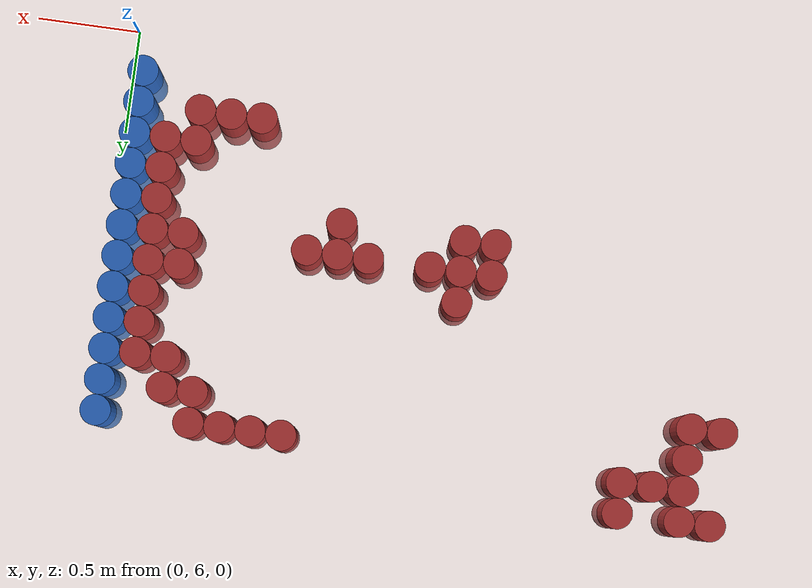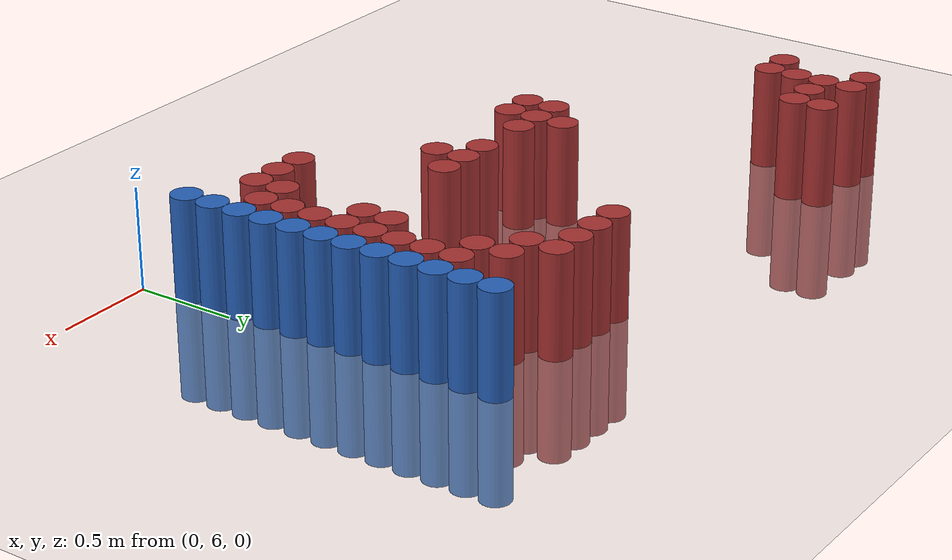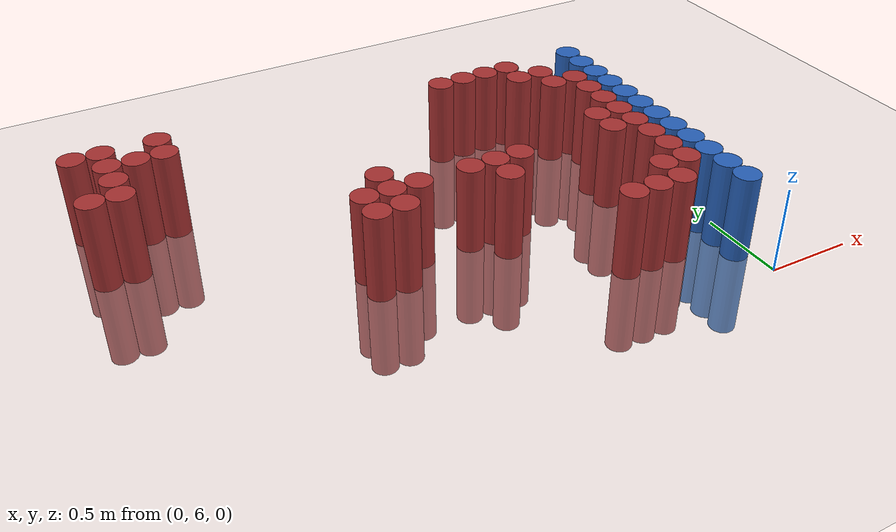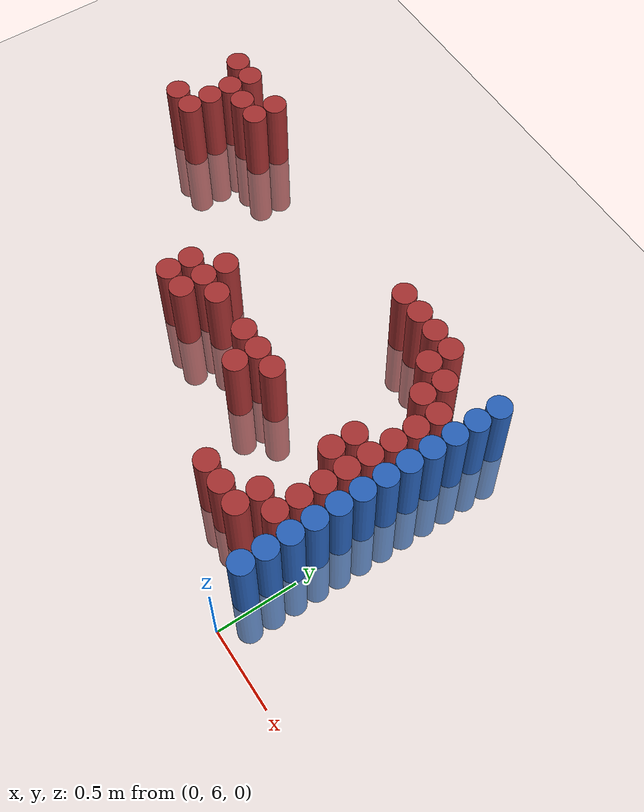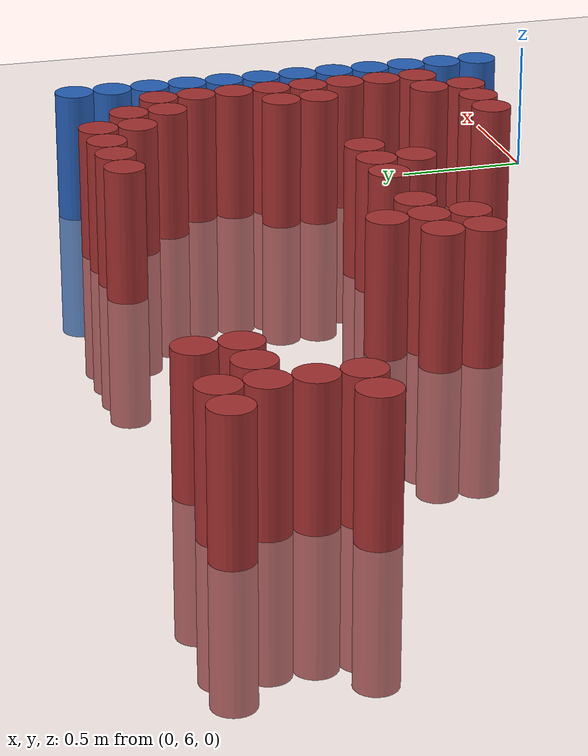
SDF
<sdf version="1.6">
 <world name="default">
  <model name="ground_plane">
   <static>1</static>
   <link name="link">
    <collision name="collision">
     <geometry><plane><normal>0 0 1</normal><size>100 100</size></plane></geometry>
     <surface><friction><ode><mu>100</mu><mu2>50</mu2></ode></friction></surface>
    </collision>
    <visual name="visual">
     <cast_shadows>0</cast_shadows>
     <geometry><plane><normal>0 0 1</normal><size>100 100</size></plane></geometry>
     <material>
      <script><uri>file://media/materials/scripts/gazebo.material</uri><name>Gazebo/Grey</name></script>
     </material>
    </visual>
   </link>
  </model>
  <model name="unit_cylinder_173">
   <static>1</static>
   <pose>-3.075000 7.575000 0.000000 0.000000 0.000000 0.000000</pose>
   <link name="link">
    <inertial>
     <mass>1</mass>
     <inertia><ixx>0.145833</ixx><ixy>0</ixy><ixz>0</ixz><iyy>0.145833</iyy><iyz>0</iyz><izz>0.125</izz></inertia>
    </inertial>
    <collision name="collision">
     <geometry><cylinder><radius>0.075000</radius><length>1</length></cylinder></geometry>
    </collision>
    <visual name="visual">
     <geometry><cylinder><radius>0.075000</radius><length>1</length></cylinder></geometry>
     <material>
      <ambient>0.648000 0.192000 0.192000 1</ambient>
      <diffuse>0.648000 0.192000 0.192000 1</diffuse>
     </material>
     <material>
      <script><name>Gazebo/Grey</name><uri>file://media/materials/scripts/gazebo.material</uri></script>
     </material>
    </visual>
   </link>
  </model>
  <model name="unit_cylinder_174">
   <static>1</static>
   <pose>-3.075000 8.025000 0.000000 0.000000 0.000000 0.000000</pose>
   <link name="link">
    <inertial>
     <mass>1</mass>
     <inertia><ixx>0.145833</ixx><ixy>0</ixy><ixz>0</ixz><iyy>0.145833</iyy><iyz>0</iyz><izz>0.125</izz></inertia>
    </inertial>
    <collision name="collision">
     <geometry><cylinder><radius>0.075000</radius><length>1</length></cylinder></geometry>
    </collision>
    <visual name="visual">
     <geometry><cylinder><radius>0.075000</radius><length>1</length></cylinder></geometry>
     <material>
      <ambient>0.648000 0.192000 0.192000 1</ambient>
      <diffuse>0.648000 0.192000 0.192000 1</diffuse>
     </material>
     <material>
      <script><name>Gazebo/Grey</name><uri>file://media/materials/scripts/gazebo.material</uri></script>
     </material>
    </visual>
   </link>
  </model>
  <model name="unit_cylinder_179">
   <static>1</static>
   <pose>-2.925000 7.575000 0.000000 0.000000 0.000000 0.000000</pose>
   <link name="link">
    <inertial>
     <mass>1</mass>
     <inertia><ixx>0.145833</ixx><ixy>0</ixy><ixz>0</ixz><iyy>0.145833</iyy><iyz>0</iyz><izz>0.125</izz></inertia>
    </inertial>
    <collision name="collision">
     <geometry><cylinder><radius>0.075000</radius><length>1</length></cylinder></geometry>
    </collision>
    <visual name="visual">
     <geometry><cylinder><radius>0.075000</radius><length>1</length></cylinder></geometry>
     <material>
      <ambient>0.648000 0.192000 0.192000 1</ambient>
      <diffuse>0.648000 0.192000 0.192000 1</diffuse>
     </material>
     <material>
      <script><name>Gazebo/Grey</name><uri>file://media/materials/scripts/gazebo.material</uri></script>
     </material>
    </visual>
   </link>
  </model>
  <model name="unit_cylinder_180">
   <static>1</static>
   <pose>-2.925000 7.725000 0.000000 0.000000 0.000000 0.000000</pose>
   <link name="link">
    <inertial>
     <mass>1</mass>
     <inertia><ixx>0.145833</ixx><ixy>0</ixy><ixz>0</ixz><iyy>0.145833</iyy><iyz>0</iyz><izz>0.125</izz></inertia>
    </inertial>
    <collision name="collision">
     <geometry><cylinder><radius>0.075000</radius><length>1</length></cylinder></geometry>
    </collision>
    <visual name="visual">
     <geometry><cylinder><radius>0.075000</radius><length>1</length></cylinder></geometry>
     <material>
      <ambient>0.648000 0.192000 0.192000 1</ambient>
      <diffuse>0.648000 0.192000 0.192000 1</diffuse>
     </material>
     <material>
      <script><name>Gazebo/Grey</name><uri>file://media/materials/scripts/gazebo.material</uri></script>
     </material>
    </visual>
   </link>
  </model>
  <model name="unit_cylinder_181">
   <static>1</static>
   <pose>-2.925000 7.875000 0.000000 0.000000 0.000000 0.000000</pose>
   <link name="link">
    <inertial>
     <mass>1</mass>
     <inertia><ixx>0.145833</ixx><ixy>0</ixy><ixz>0</ixz><iyy>0.145833</iyy><iyz>0</iyz><izz>0.125</izz></inertia>
    </inertial>
    <collision name="collision">
     <geometry><cylinder><radius>0.075000</radius><length>1</length></cylinder></geometry>
    </collision>
    <visual name="visual">
     <geometry><cylinder><radius>0.075000</radius><length>1</length></cylinder></geometry>
     <material>
      <ambient>0.648000 0.192000 0.192000 1</ambient>
      <diffuse>0.648000 0.192000 0.192000 1</diffuse>
     </material>
     <material>
      <script><name>Gazebo/Grey</name><uri>file://media/materials/scripts/gazebo.material</uri></script>
     </material>
    </visual>
   </link>
  </model>
  <model name="unit_cylinder_182">
   <static>1</static>
   <pose>-2.925000 8.025000 0.000000 0.000000 0.000000 0.000000</pose>
   <link name="link">
    <inertial>
     <mass>1</mass>
     <inertia><ixx>0.145833</ixx><ixy>0</ixy><ixz>0</ixz><iyy>0.145833</iyy><iyz>0</iyz><izz>0.125</izz></inertia>
    </inertial>
    <collision name="collision">
     <geometry><cylinder><radius>0.075000</radius><length>1</length></cylinder></geometry>
    </collision>
    <visual name="visual">
     <geometry><cylinder><radius>0.075000</radius><length>1</length></cylinder></geometry>
     <material>
      <ambient>0.648000 0.192000 0.192000 1</ambient>
      <diffuse>0.648000 0.192000 0.192000 1</diffuse>
     </material>
     <material>
      <script><name>Gazebo/Grey</name><uri>file://media/materials/scripts/gazebo.material</uri></script>
     </material>
    </visual>
   </link>
  </model>
  <model name="unit_cylinder_184">
   <static>1</static>
   <pose>-2.775000 7.875000 0.000000 0.000000 0.000000 0.000000</pose>
   <link name="link">
    <inertial>
     <mass>1</mass>
     <inertia><ixx>0.145833</ixx><ixy>0</ixy><ixz>0</ixz><iyy>0.145833</iyy><iyz>0</iyz><izz>0.125</izz></inertia>
    </inertial>
    <collision name="collision">
     <geometry><cylinder><radius>0.075000</radius><length>1</length></cylinder></geometry>
    </collision>
    <visual name="visual">
     <geometry><cylinder><radius>0.075000</radius><length>1</length></cylinder></geometry>
     <material>
      <ambient>0.648000 0.192000 0.192000 1</ambient>
      <diffuse>0.648000 0.192000 0.192000 1</diffuse>
     </material>
     <material>
      <script><name>Gazebo/Grey</name><uri>file://media/materials/scripts/gazebo.material</uri></script>
     </material>
    </visual>
   </link>
  </model>
  <model name="unit_cylinder_186">
   <static>1</static>
   <pose>-2.625000 7.875000 0.000000 0.000000 0.000000 0.000000</pose>
   <link name="link">
    <inertial>
     <mass>1</mass>
     <inertia><ixx>0.145833</ixx><ixy>0</ixy><ixz>0</ixz><iyy>0.145833</iyy><iyz>0</iyz><izz>0.125</izz></inertia>
    </inertial>
    <collision name="collision">
     <geometry><cylinder><radius>0.075000</radius><length>1</length></cylinder></geometry>
    </collision>
    <visual name="visual">
     <geometry><cylinder><radius>0.075000</radius><length>1</length></cylinder></geometry>
     <material>
      <ambient>0.648000 0.192000 0.192000 1</ambient>
      <diffuse>0.648000 0.192000 0.192000 1</diffuse>
     </material>
     <material>
      <script><name>Gazebo/Grey</name><uri>file://media/materials/scripts/gazebo.material</uri></script>
     </material>
    </visual>
   </link>
  </model>
  <model name="unit_cylinder_187">
   <static>1</static>
   <pose>-2.625000 8.025000 0.000000 0.000000 0.000000 0.000000</pose>
   <link name="link">
    <inertial>
     <mass>1</mass>
     <inertia><ixx>0.145833</ixx><ixy>0</ixy><ixz>0</ixz><iyy>0.145833</iyy><iyz>0</iyz><izz>0.125</izz></inertia>
    </inertial>
    <collision name="collision">
     <geometry><cylinder><radius>0.075000</radius><length>1</length></cylinder></geometry>
    </collision>
    <visual name="visual">
     <geometry><cylinder><radius>0.075000</radius><length>1</length></cylinder></geometry>
     <material>
      <ambient>0.648000 0.192000 0.192000 1</ambient>
      <diffuse>0.648000 0.192000 0.192000 1</diffuse>
     </material>
     <material>
      <script><name>Gazebo/Grey</name><uri>file://media/materials/scripts/gazebo.material</uri></script>
     </material>
    </visual>
   </link>
  </model>
  <model name="unit_cylinder_208">
   <static>1</static>
   <pose>-1.875000 6.825000 0.000000 0.000000 0.000000 0.000000</pose>
   <link name="link">
    <inertial>
     <mass>1</mass>
     <inertia><ixx>0.145833</ixx><ixy>0</ixy><ixz>0</ixz><iyy>0.145833</iyy><iyz>0</iyz><izz>0.125</izz></inertia>
    </inertial>
    <collision name="collision">
     <geometry><cylinder><radius>0.075000</radius><length>1</length></cylinder></geometry>
    </collision>
    <visual name="visual">
     <geometry><cylinder><radius>0.075000</radius><length>1</length></cylinder></geometry>
     <material>
      <ambient>0.648000 0.192000 0.192000 1</ambient>
      <diffuse>0.648000 0.192000 0.192000 1</diffuse>
     </material>
     <material>
      <script><name>Gazebo/Grey</name><uri>file://media/materials/scripts/gazebo.material</uri></script>
     </material>
    </visual>
   </link>
  </model>
  <model name="unit_cylinder_209">
   <static>1</static>
   <pose>-1.875000 6.975000 0.000000 0.000000 0.000000 0.000000</pose>
   <link name="link">
    <inertial>
     <mass>1</mass>
     <inertia><ixx>0.145833</ixx><ixy>0</ixy><ixz>0</ixz><iyy>0.145833</iyy><iyz>0</iyz><izz>0.125</izz></inertia>
    </inertial>
    <collision name="collision">
     <geometry><cylinder><radius>0.075000</radius><length>1</length></cylinder></geometry>
    </collision>
    <visual name="visual">
     <geometry><cylinder><radius>0.075000</radius><length>1</length></cylinder></geometry>
     <material>
      <ambient>0.648000 0.192000 0.192000 1</ambient>
      <diffuse>0.648000 0.192000 0.192000 1</diffuse>
     </material>
     <material>
      <script><name>Gazebo/Grey</name><uri>file://media/materials/scripts/gazebo.material</uri></script>
     </material>
    </visual>
   </link>
  </model>
  <model name="unit_cylinder_212">
   <static>1</static>
   <pose>-1.725000 6.825000 0.000000 0.000000 0.000000 0.000000</pose>
   <link name="link">
    <inertial>
     <mass>1</mass>
     <inertia><ixx>0.145833</ixx><ixy>0</ixy><ixz>0</ixz><iyy>0.145833</iyy><iyz>0</iyz><izz>0.125</izz></inertia>
    </inertial>
    <collision name="collision">
     <geometry><cylinder><radius>0.075000</radius><length>1</length></cylinder></geometry>
    </collision>
    <visual name="visual">
     <geometry><cylinder><radius>0.075000</radius><length>1</length></cylinder></geometry>
     <material>
      <ambient>0.648000 0.192000 0.192000 1</ambient>
      <diffuse>0.648000 0.192000 0.192000 1</diffuse>
     </material>
     <material>
      <script><name>Gazebo/Grey</name><uri>file://media/materials/scripts/gazebo.material</uri></script>
     </material>
    </visual>
   </link>
  </model>
  <model name="unit_cylinder_213">
   <static>1</static>
   <pose>-1.725000 6.975000 0.000000 0.000000 0.000000 0.000000</pose>
   <link name="link">
    <inertial>
     <mass>1</mass>
     <inertia><ixx>0.145833</ixx><ixy>0</ixy><ixz>0</ixz><iyy>0.145833</iyy><iyz>0</iyz><izz>0.125</izz></inertia>
    </inertial>
    <collision name="collision">
     <geometry><cylinder><radius>0.075000</radius><length>1</length></cylinder></geometry>
    </collision>
    <visual name="visual">
     <geometry><cylinder><radius>0.075000</radius><length>1</length></cylinder></geometry>
     <material>
      <ambient>0.648000 0.192000 0.192000 1</ambient>
      <diffuse>0.648000 0.192000 0.192000 1</diffuse>
     </material>
     <material>
      <script><name>Gazebo/Grey</name><uri>file://media/materials/scripts/gazebo.material</uri></script>
     </material>
    </visual>
   </link>
  </model>
  <model name="unit_cylinder_214">
   <static>1</static>
   <pose>-1.725000 7.125000 0.000000 0.000000 0.000000 0.000000</pose>
   <link name="link">
    <inertial>
     <mass>1</mass>
     <inertia><ixx>0.145833</ixx><ixy>0</ixy><ixz>0</ixz><iyy>0.145833</iyy><iyz>0</iyz><izz>0.125</izz></inertia>
    </inertial>
    <collision name="collision">
     <geometry><cylinder><radius>0.075000</radius><length>1</length></cylinder></geometry>
    </collision>
    <visual name="visual">
     <geometry><cylinder><radius>0.075000</radius><length>1</length></cylinder></geometry>
     <material>
      <ambient>0.648000 0.192000 0.192000 1</ambient>
      <diffuse>0.648000 0.192000 0.192000 1</diffuse>
     </material>
     <material>
      <script><name>Gazebo/Grey</name><uri>file://media/materials/scripts/gazebo.material</uri></script>
     </material>
    </visual>
   </link>
  </model>
  <model name="unit_cylinder_216">
   <static>1</static>
   <pose>-1.575000 6.975000 0.000000 0.000000 0.000000 0.000000</pose>
   <link name="link">
    <inertial>
     <mass>1</mass>
     <inertia><ixx>0.145833</ixx><ixy>0</ixy><ixz>0</ixz><iyy>0.145833</iyy><iyz>0</iyz><izz>0.125</izz></inertia>
    </inertial>
    <collision name="collision">
     <geometry><cylinder><radius>0.075000</radius><length>1</length></cylinder></geometry>
    </collision>
    <visual name="visual">
     <geometry><cylinder><radius>0.075000</radius><length>1</length></cylinder></geometry>
     <material>
      <ambient>0.648000 0.192000 0.192000 1</ambient>
      <diffuse>0.648000 0.192000 0.192000 1</diffuse>
     </material>
     <material>
      <script><name>Gazebo/Grey</name><uri>file://media/materials/scripts/gazebo.material</uri></script>
     </material>
    </visual>
   </link>
  </model>
  <model name="unit_cylinder_217">
   <static>1</static>
   <pose>-1.275000 6.975000 0.000000 0.000000 0.000000 0.000000</pose>
   <link name="link">
    <inertial>
     <mass>1</mass>
     <inertia><ixx>0.145833</ixx><ixy>0</ixy><ixz>0</ixz><iyy>0.145833</iyy><iyz>0</iyz><izz>0.125</izz></inertia>
    </inertial>
    <collision name="collision">
     <geometry><cylinder><radius>0.075000</radius><length>1</length></cylinder></geometry>
    </collision>
    <visual name="visual">
     <geometry><cylinder><radius>0.075000</radius><length>1</length></cylinder></geometry>
     <material>
      <ambient>0.648000 0.192000 0.192000 1</ambient>
      <diffuse>0.648000 0.192000 0.192000 1</diffuse>
     </material>
     <material>
      <script><name>Gazebo/Grey</name><uri>file://media/materials/scripts/gazebo.material</uri></script>
     </material>
    </visual>
   </link>
  </model>
  <model name="unit_cylinder_222">
   <static>1</static>
   <pose>-1.125000 6.825000 0.000000 0.000000 0.000000 0.000000</pose>
   <link name="link">
    <inertial>
     <mass>1</mass>
     <inertia><ixx>0.145833</ixx><ixy>0</ixy><ixz>0</ixz><iyy>0.145833</iyy><iyz>0</iyz><izz>0.125</izz></inertia>
    </inertial>
    <collision name="collision">
     <geometry><cylinder><radius>0.075000</radius><length>1</length></cylinder></geometry>
    </collision>
    <visual name="visual">
     <geometry><cylinder><radius>0.075000</radius><length>1</length></cylinder></geometry>
     <material>
      <ambient>0.648000 0.192000 0.192000 1</ambient>
      <diffuse>0.648000 0.192000 0.192000 1</diffuse>
     </material>
     <material>
      <script><name>Gazebo/Grey</name><uri>file://media/materials/scripts/gazebo.material</uri></script>
     </material>
    </visual>
   </link>
  </model>
  <model name="unit_cylinder_223">
   <static>1</static>
   <pose>-1.125000 6.975000 0.000000 0.000000 0.000000 0.000000</pose>
   <link name="link">
    <inertial>
     <mass>1</mass>
     <inertia><ixx>0.145833</ixx><ixy>0</ixy><ixz>0</ixz><iyy>0.145833</iyy><iyz>0</iyz><izz>0.125</izz></inertia>
    </inertial>
    <collision name="collision">
     <geometry><cylinder><radius>0.075000</radius><length>1</length></cylinder></geometry>
    </collision>
    <visual name="visual">
     <geometry><cylinder><radius>0.075000</radius><length>1</length></cylinder></geometry>
     <material>
      <ambient>0.648000 0.192000 0.192000 1</ambient>
      <diffuse>0.648000 0.192000 0.192000 1</diffuse>
     </material>
     <material>
      <script><name>Gazebo/Grey</name><uri>file://media/materials/scripts/gazebo.material</uri></script>
     </material>
    </visual>
   </link>
  </model>
  <model name="unit_cylinder_232">
   <static>1</static>
   <pose>-0.975000 6.975000 0.000000 0.000000 0.000000 0.000000</pose>
   <link name="link">
    <inertial>
     <mass>1</mass>
     <inertia><ixx>0.145833</ixx><ixy>0</ixy><ixz>0</ixz><iyy>0.145833</iyy><iyz>0</iyz><izz>0.125</izz></inertia>
    </inertial>
    <collision name="collision">
     <geometry><cylinder><radius>0.075000</radius><length>1</length></cylinder></geometry>
    </collision>
    <visual name="visual">
     <geometry><cylinder><radius>0.075000</radius><length>1</length></cylinder></geometry>
     <material>
      <ambient>0.648000 0.192000 0.192000 1</ambient>
      <diffuse>0.648000 0.192000 0.192000 1</diffuse>
     </material>
     <material>
      <script><name>Gazebo/Grey</name><uri>file://media/materials/scripts/gazebo.material</uri></script>
     </material>
    </visual>
   </link>
  </model>
  <model name="unit_cylinder_233">
   <static>1</static>
   <pose>-0.975000 7.875000 0.000000 0.000000 0.000000 0.000000</pose>
   <link name="link">
    <inertial>
     <mass>1</mass>
     <inertia><ixx>0.145833</ixx><ixy>0</ixy><ixz>0</ixz><iyy>0.145833</iyy><iyz>0</iyz><izz>0.125</izz></inertia>
    </inertial>
    <collision name="collision">
     <geometry><cylinder><radius>0.075000</radius><length>1</length></cylinder></geometry>
    </collision>
    <visual name="visual">
     <geometry><cylinder><radius>0.075000</radius><length>1</length></cylinder></geometry>
     <material>
      <ambient>0.648000 0.192000 0.192000 1</ambient>
      <diffuse>0.648000 0.192000 0.192000 1</diffuse>
     </material>
     <material>
      <script><name>Gazebo/Grey</name><uri>file://media/materials/scripts/gazebo.material</uri></script>
     </material>
    </visual>
   </link>
  </model>
  <model name="unit_cylinder_239">
   <static>1</static>
   <pose>-0.825000 7.875000 0.000000 0.000000 0.000000 0.000000</pose>
   <link name="link">
    <inertial>
     <mass>1</mass>
     <inertia><ixx>0.145833</ixx><ixy>0</ixy><ixz>0</ixz><iyy>0.145833</iyy><iyz>0</iyz><izz>0.125</izz></inertia>
    </inertial>
    <collision name="collision">
     <geometry><cylinder><radius>0.075000</radius><length>1</length></cylinder></geometry>
    </collision>
    <visual name="visual">
     <geometry><cylinder><radius>0.075000</radius><length>1</length></cylinder></geometry>
     <material>
      <ambient>0.648000 0.192000 0.192000 1</ambient>
      <diffuse>0.648000 0.192000 0.192000 1</diffuse>
     </material>
     <material>
      <script><name>Gazebo/Grey</name><uri>file://media/materials/scripts/gazebo.material</uri></script>
     </material>
    </visual>
   </link>
  </model>
  <model name="unit_cylinder_242">
   <static>1</static>
   <pose>-0.675000 6.375000 0.000000 0.000000 0.000000 0.000000</pose>
   <link name="link">
    <inertial>
     <mass>1</mass>
     <inertia><ixx>0.145833</ixx><ixy>0</ixy><ixz>0</ixz><iyy>0.145833</iyy><iyz>0</iyz><izz>0.125</izz></inertia>
    </inertial>
    <collision name="collision">
     <geometry><cylinder><radius>0.075000</radius><length>1</length></cylinder></geometry>
    </collision>
    <visual name="visual">
     <geometry><cylinder><radius>0.075000</radius><length>1</length></cylinder></geometry>
     <material>
      <ambient>0.648000 0.192000 0.192000 1</ambient>
      <diffuse>0.648000 0.192000 0.192000 1</diffuse>
     </material>
     <material>
      <script><name>Gazebo/Grey</name><uri>file://media/materials/scripts/gazebo.material</uri></script>
     </material>
    </visual>
   </link>
  </model>
  <model name="unit_cylinder_243">
   <static>1</static>
   <pose>-0.675000 7.875000 0.000000 0.000000 0.000000 0.000000</pose>
   <link name="link">
    <inertial>
     <mass>1</mass>
     <inertia><ixx>0.145833</ixx><ixy>0</ixy><ixz>0</ixz><iyy>0.145833</iyy><iyz>0</iyz><izz>0.125</izz></inertia>
    </inertial>
    <collision name="collision">
     <geometry><cylinder><radius>0.075000</radius><length>1</length></cylinder></geometry>
    </collision>
    <visual name="visual">
     <geometry><cylinder><radius>0.075000</radius><length>1</length></cylinder></geometry>
     <material>
      <ambient>0.648000 0.192000 0.192000 1</ambient>
      <diffuse>0.648000 0.192000 0.192000 1</diffuse>
     </material>
     <material>
      <script><name>Gazebo/Grey</name><uri>file://media/materials/scripts/gazebo.material</uri></script>
     </material>
    </visual>
   </link>
  </model>
  <model name="unit_cylinder_247">
   <static>1</static>
   <pose>-0.525000 6.375000 0.000000 0.000000 0.000000 0.000000</pose>
   <link name="link">
    <inertial>
     <mass>1</mass>
     <inertia><ixx>0.145833</ixx><ixy>0</ixy><ixz>0</ixz><iyy>0.145833</iyy><iyz>0</iyz><izz>0.125</izz></inertia>
    </inertial>
    <collision name="collision">
     <geometry><cylinder><radius>0.075000</radius><length>1</length></cylinder></geometry>
    </collision>
    <visual name="visual">
     <geometry><cylinder><radius>0.075000</radius><length>1</length></cylinder></geometry>
     <material>
      <ambient>0.648000 0.192000 0.192000 1</ambient>
      <diffuse>0.648000 0.192000 0.192000 1</diffuse>
     </material>
     <material>
      <script><name>Gazebo/Grey</name><uri>file://media/materials/scripts/gazebo.material</uri></script>
     </material>
    </visual>
   </link>
  </model>
  <model name="unit_cylinder_248">
   <static>1</static>
   <pose>-0.525000 7.725000 0.000000 0.000000 0.000000 0.000000</pose>
   <link name="link">
    <inertial>
     <mass>1</mass>
     <inertia><ixx>0.145833</ixx><ixy>0</ixy><ixz>0</ixz><iyy>0.145833</iyy><iyz>0</iyz><izz>0.125</izz></inertia>
    </inertial>
    <collision name="collision">
     <geometry><cylinder><radius>0.075000</radius><length>1</length></cylinder></geometry>
    </collision>
    <visual name="visual">
     <geometry><cylinder><radius>0.075000</radius><length>1</length></cylinder></geometry>
     <material>
      <ambient>0.648000 0.192000 0.192000 1</ambient>
      <diffuse>0.648000 0.192000 0.192000 1</diffuse>
     </material>
     <material>
      <script><name>Gazebo/Grey</name><uri>file://media/materials/scripts/gazebo.material</uri></script>
     </material>
    </visual>
   </link>
  </model>
  <model name="unit_cylinder_249">
   <static>1</static>
   <pose>-0.525000 7.875000 0.000000 0.000000 0.000000 0.000000</pose>
   <link name="link">
    <inertial>
     <mass>1</mass>
     <inertia><ixx>0.145833</ixx><ixy>0</ixy><ixz>0</ixz><iyy>0.145833</iyy><iyz>0</iyz><izz>0.125</izz></inertia>
    </inertial>
    <collision name="collision">
     <geometry><cylinder><radius>0.075000</radius><length>1</length></cylinder></geometry>
    </collision>
    <visual name="visual">
     <geometry><cylinder><radius>0.075000</radius><length>1</length></cylinder></geometry>
     <material>
      <ambient>0.648000 0.192000 0.192000 1</ambient>
      <diffuse>0.648000 0.192000 0.192000 1</diffuse>
     </material>
     <material>
      <script><name>Gazebo/Grey</name><uri>file://media/materials/scripts/gazebo.material</uri></script>
     </material>
    </visual>
   </link>
  </model>
  <model name="unit_cylinder_254">
   <static>1</static>
   <pose>-0.375000 6.375000 0.000000 0.000000 0.000000 0.000000</pose>
   <link name="link">
    <inertial>
     <mass>1</mass>
     <inertia><ixx>0.145833</ixx><ixy>0</ixy><ixz>0</ixz><iyy>0.145833</iyy><iyz>0</iyz><izz>0.125</izz></inertia>
    </inertial>
    <collision name="collision">
     <geometry><cylinder><radius>0.075000</radius><length>1</length></cylinder></geometry>
    </collision>
    <visual name="visual">
     <geometry><cylinder><radius>0.075000</radius><length>1</length></cylinder></geometry>
     <material>
      <ambient>0.648000 0.192000 0.192000 1</ambient>
      <diffuse>0.648000 0.192000 0.192000 1</diffuse>
     </material>
     <material>
      <script><name>Gazebo/Grey</name><uri>file://media/materials/scripts/gazebo.material</uri></script>
     </material>
    </visual>
   </link>
  </model>
  <model name="unit_cylinder_255">
   <static>1</static>
   <pose>-0.375000 6.525000 0.000000 0.000000 0.000000 0.000000</pose>
   <link name="link">
    <inertial>
     <mass>1</mass>
     <inertia><ixx>0.145833</ixx><ixy>0</ixy><ixz>0</ixz><iyy>0.145833</iyy><iyz>0</iyz><izz>0.125</izz></inertia>
    </inertial>
    <collision name="collision">
     <geometry><cylinder><radius>0.075000</radius><length>1</length></cylinder></geometry>
    </collision>
    <visual name="visual">
     <geometry><cylinder><radius>0.075000</radius><length>1</length></cylinder></geometry>
     <material>
      <ambient>0.648000 0.192000 0.192000 1</ambient>
      <diffuse>0.648000 0.192000 0.192000 1</diffuse>
     </material>
     <material>
      <script><name>Gazebo/Grey</name><uri>file://media/materials/scripts/gazebo.material</uri></script>
     </material>
    </visual>
   </link>
  </model>
  <model name="unit_cylinder_256">
   <static>1</static>
   <pose>-0.375000 6.975000 0.000000 0.000000 0.000000 0.000000</pose>
   <link name="link">
    <inertial>
     <mass>1</mass>
     <inertia><ixx>0.145833</ixx><ixy>0</ixy><ixz>0</ixz><iyy>0.145833</iyy><iyz>0</iyz><izz>0.125</izz></inertia>
    </inertial>
    <collision name="collision">
     <geometry><cylinder><radius>0.075000</radius><length>1</length></cylinder></geometry>
    </collision>
    <visual name="visual">
     <geometry><cylinder><radius>0.075000</radius><length>1</length></cylinder></geometry>
     <material>
      <ambient>0.648000 0.192000 0.192000 1</ambient>
      <diffuse>0.648000 0.192000 0.192000 1</diffuse>
     </material>
     <material>
      <script><name>Gazebo/Grey</name><uri>file://media/materials/scripts/gazebo.material</uri></script>
     </material>
    </visual>
   </link>
  </model>
  <model name="unit_cylinder_257">
   <static>1</static>
   <pose>-0.375000 7.125000 0.000000 0.000000 0.000000 0.000000</pose>
   <link name="link">
    <inertial>
     <mass>1</mass>
     <inertia><ixx>0.145833</ixx><ixy>0</ixy><ixz>0</ixz><iyy>0.145833</iyy><iyz>0</iyz><izz>0.125</izz></inertia>
    </inertial>
    <collision name="collision">
     <geometry><cylinder><radius>0.075000</radius><length>1</length></cylinder></geometry>
    </collision>
    <visual name="visual">
     <geometry><cylinder><radius>0.075000</radius><length>1</length></cylinder></geometry>
     <material>
      <ambient>0.648000 0.192000 0.192000 1</ambient>
      <diffuse>0.648000 0.192000 0.192000 1</diffuse>
     </material>
     <material>
      <script><name>Gazebo/Grey</name><uri>file://media/materials/scripts/gazebo.material</uri></script>
     </material>
    </visual>
   </link>
  </model>
  <model name="unit_cylinder_258">
   <static>1</static>
   <pose>-0.375000 7.575000 0.000000 0.000000 0.000000 0.000000</pose>
   <link name="link">
    <inertial>
     <mass>1</mass>
     <inertia><ixx>0.145833</ixx><ixy>0</ixy><ixz>0</ixz><iyy>0.145833</iyy><iyz>0</iyz><izz>0.125</izz></inertia>
    </inertial>
    <collision name="collision">
     <geometry><cylinder><radius>0.075000</radius><length>1</length></cylinder></geometry>
    </collision>
    <visual name="visual">
     <geometry><cylinder><radius>0.075000</radius><length>1</length></cylinder></geometry>
     <material>
      <ambient>0.648000 0.192000 0.192000 1</ambient>
      <diffuse>0.648000 0.192000 0.192000 1</diffuse>
     </material>
     <material>
      <script><name>Gazebo/Grey</name><uri>file://media/materials/scripts/gazebo.material</uri></script>
     </material>
    </visual>
   </link>
  </model>
  <model name="unit_cylinder_259">
   <static>1</static>
   <pose>-0.375000 7.725000 0.000000 0.000000 0.000000 0.000000</pose>
   <link name="link">
    <inertial>
     <mass>1</mass>
     <inertia><ixx>0.145833</ixx><ixy>0</ixy><ixz>0</ixz><iyy>0.145833</iyy><iyz>0</iyz><izz>0.125</izz></inertia>
    </inertial>
    <collision name="collision">
     <geometry><cylinder><radius>0.075000</radius><length>1</length></cylinder></geometry>
    </collision>
    <visual name="visual">
     <geometry><cylinder><radius>0.075000</radius><length>1</length></cylinder></geometry>
     <material>
      <ambient>0.648000 0.192000 0.192000 1</ambient>
      <diffuse>0.648000 0.192000 0.192000 1</diffuse>
     </material>
     <material>
      <script><name>Gazebo/Grey</name><uri>file://media/materials/scripts/gazebo.material</uri></script>
     </material>
    </visual>
   </link>
  </model>
  <model name="unit_cylinder_268">
   <static>1</static>
   <pose>-0.225000 6.525000 0.000000 0.000000 0.000000 0.000000</pose>
   <link name="link">
    <inertial>
     <mass>1</mass>
     <inertia><ixx>0.145833</ixx><ixy>0</ixy><ixz>0</ixz><iyy>0.145833</iyy><iyz>0</iyz><izz>0.125</izz></inertia>
    </inertial>
    <collision name="collision">
     <geometry><cylinder><radius>0.075000</radius><length>1</length></cylinder></geometry>
    </collision>
    <visual name="visual">
     <geometry><cylinder><radius>0.075000</radius><length>1</length></cylinder></geometry>
     <material>
      <ambient>0.648000 0.192000 0.192000 1</ambient>
      <diffuse>0.648000 0.192000 0.192000 1</diffuse>
     </material>
     <material>
      <script><name>Gazebo/Grey</name><uri>file://media/materials/scripts/gazebo.material</uri></script>
     </material>
    </visual>
   </link>
  </model>
  <model name="unit_cylinder_269">
   <static>1</static>
   <pose>-0.225000 6.675000 0.000000 0.000000 0.000000 0.000000</pose>
   <link name="link">
    <inertial>
     <mass>1</mass>
     <inertia><ixx>0.145833</ixx><ixy>0</ixy><ixz>0</ixz><iyy>0.145833</iyy><iyz>0</iyz><izz>0.125</izz></inertia>
    </inertial>
    <collision name="collision">
     <geometry><cylinder><radius>0.075000</radius><length>1</length></cylinder></geometry>
    </collision>
    <visual name="visual">
     <geometry><cylinder><radius>0.075000</radius><length>1</length></cylinder></geometry>
     <material>
      <ambient>0.648000 0.192000 0.192000 1</ambient>
      <diffuse>0.648000 0.192000 0.192000 1</diffuse>
     </material>
     <material>
      <script><name>Gazebo/Grey</name><uri>file://media/materials/scripts/gazebo.material</uri></script>
     </material>
    </visual>
   </link>
  </model>
  <model name="unit_cylinder_270">
   <static>1</static>
   <pose>-0.225000 6.825000 0.000000 0.000000 0.000000 0.000000</pose>
   <link name="link">
    <inertial>
     <mass>1</mass>
     <inertia><ixx>0.145833</ixx><ixy>0</ixy><ixz>0</ixz><iyy>0.145833</iyy><iyz>0</iyz><izz>0.125</izz></inertia>
    </inertial>
    <collision name="collision">
     <geometry><cylinder><radius>0.075000</radius><length>1</length></cylinder></geometry>
    </collision>
    <visual name="visual">
     <geometry><cylinder><radius>0.075000</radius><length>1</length></cylinder></geometry>
     <material>
      <ambient>0.648000 0.192000 0.192000 1</ambient>
      <diffuse>0.648000 0.192000 0.192000 1</diffuse>
     </material>
     <material>
      <script><name>Gazebo/Grey</name><uri>file://media/materials/scripts/gazebo.material</uri></script>
     </material>
    </visual>
   </link>
  </model>
  <model name="unit_cylinder_271">
   <static>1</static>
   <pose>-0.225000 6.975000 0.000000 0.000000 0.000000 0.000000</pose>
   <link name="link">
    <inertial>
     <mass>1</mass>
     <inertia><ixx>0.145833</ixx><ixy>0</ixy><ixz>0</ixz><iyy>0.145833</iyy><iyz>0</iyz><izz>0.125</izz></inertia>
    </inertial>
    <collision name="collision">
     <geometry><cylinder><radius>0.075000</radius><length>1</length></cylinder></geometry>
    </collision>
    <visual name="visual">
     <geometry><cylinder><radius>0.075000</radius><length>1</length></cylinder></geometry>
     <material>
      <ambient>0.648000 0.192000 0.192000 1</ambient>
      <diffuse>0.648000 0.192000 0.192000 1</diffuse>
     </material>
     <material>
      <script><name>Gazebo/Grey</name><uri>file://media/materials/scripts/gazebo.material</uri></script>
     </material>
    </visual>
   </link>
  </model>
  <model name="unit_cylinder_272">
   <static>1</static>
   <pose>-0.225000 7.125000 0.000000 0.000000 0.000000 0.000000</pose>
   <link name="link">
    <inertial>
     <mass>1</mass>
     <inertia><ixx>0.145833</ixx><ixy>0</ixy><ixz>0</ixz><iyy>0.145833</iyy><iyz>0</iyz><izz>0.125</izz></inertia>
    </inertial>
    <collision name="collision">
     <geometry><cylinder><radius>0.075000</radius><length>1</length></cylinder></geometry>
    </collision>
    <visual name="visual">
     <geometry><cylinder><radius>0.075000</radius><length>1</length></cylinder></geometry>
     <material>
      <ambient>0.648000 0.192000 0.192000 1</ambient>
      <diffuse>0.648000 0.192000 0.192000 1</diffuse>
     </material>
     <material>
      <script><name>Gazebo/Grey</name><uri>file://media/materials/scripts/gazebo.material</uri></script>
     </material>
    </visual>
   </link>
  </model>
  <model name="unit_cylinder_273">
   <static>1</static>
   <pose>-0.225000 7.275000 0.000000 0.000000 0.000000 0.000000</pose>
   <link name="link">
    <inertial>
     <mass>1</mass>
     <inertia><ixx>0.145833</ixx><ixy>0</ixy><ixz>0</ixz><iyy>0.145833</iyy><iyz>0</iyz><izz>0.125</izz></inertia>
    </inertial>
    <collision name="collision">
     <geometry><cylinder><radius>0.075000</radius><length>1</length></cylinder></geometry>
    </collision>
    <visual name="visual">
     <geometry><cylinder><radius>0.075000</radius><length>1</length></cylinder></geometry>
     <material>
      <ambient>0.648000 0.192000 0.192000 1</ambient>
      <diffuse>0.648000 0.192000 0.192000 1</diffuse>
     </material>
     <material>
      <script><name>Gazebo/Grey</name><uri>file://media/materials/scripts/gazebo.material</uri></script>
     </material>
    </visual>
   </link>
  </model>
  <model name="unit_cylinder_274">
   <static>1</static>
   <pose>-0.225000 7.425000 0.000000 0.000000 0.000000 0.000000</pose>
   <link name="link">
    <inertial>
     <mass>1</mass>
     <inertia><ixx>0.145833</ixx><ixy>0</ixy><ixz>0</ixz><iyy>0.145833</iyy><iyz>0</iyz><izz>0.125</izz></inertia>
    </inertial>
    <collision name="collision">
     <geometry><cylinder><radius>0.075000</radius><length>1</length></cylinder></geometry>
    </collision>
    <visual name="visual">
     <geometry><cylinder><radius>0.075000</radius><length>1</length></cylinder></geometry>
     <material>
      <ambient>0.648000 0.192000 0.192000 1</ambient>
      <diffuse>0.648000 0.192000 0.192000 1</diffuse>
     </material>
     <material>
      <script><name>Gazebo/Grey</name><uri>file://media/materials/scripts/gazebo.material</uri></script>
     </material>
    </visual>
   </link>
  </model>
  <model name="unit_cylinder_275">
   <static>1</static>
   <pose>-0.225000 7.575000 0.000000 0.000000 0.000000 0.000000</pose>
   <link name="link">
    <inertial>
     <mass>1</mass>
     <inertia><ixx>0.145833</ixx><ixy>0</ixy><ixz>0</ixz><iyy>0.145833</iyy><iyz>0</iyz><izz>0.125</izz></inertia>
    </inertial>
    <collision name="collision">
     <geometry><cylinder><radius>0.075000</radius><length>1</length></cylinder></geometry>
    </collision>
    <visual name="visual">
     <geometry><cylinder><radius>0.075000</radius><length>1</length></cylinder></geometry>
     <material>
      <ambient>0.648000 0.192000 0.192000 1</ambient>
      <diffuse>0.648000 0.192000 0.192000 1</diffuse>
     </material>
     <material>
      <script><name>Gazebo/Grey</name><uri>file://media/materials/scripts/gazebo.material</uri></script>
     </material>
    </visual>
   </link>
  </model>
  <model name="unit_cylinder_289">
   <static>1</static>
   <pose>-0.075000 6.225000 0.000000 0.000000 0.000000 0.000000</pose>
   <link name="link">
    <inertial>
     <mass>1</mass>
     <inertia><ixx>0.145833</ixx><ixy>0</ixy><ixz>0</ixz><iyy>0.145833</iyy><iyz>0</iyz><izz>0.125</izz></inertia>
    </inertial>
    <collision name="collision">
     <geometry><cylinder><radius>0.075000</radius><length>1</length></cylinder></geometry>
    </collision>
    <visual name="visual">
     <geometry><cylinder><radius>0.075000</radius><length>1</length></cylinder></geometry>
     <material>
      <ambient>0.152000 0.379000 0.720000 1</ambient>
      <diffuse>0.152000 0.379000 0.720000 1</diffuse>
     </material>
     <material>
      <script><name>Gazebo/Grey</name><uri>file://media/materials/scripts/gazebo.material</uri></script>
     </material>
    </visual>
   </link>
  </model>
  <model name="unit_cylinder_290">
   <static>1</static>
   <pose>-0.075000 6.375000 0.000000 0.000000 0.000000 0.000000</pose>
   <link name="link">
    <inertial>
     <mass>1</mass>
     <inertia><ixx>0.145833</ixx><ixy>0</ixy><ixz>0</ixz><iyy>0.145833</iyy><iyz>0</iyz><izz>0.125</izz></inertia>
    </inertial>
    <collision name="collision">
     <geometry><cylinder><radius>0.075000</radius><length>1</length></cylinder></geometry>
    </collision>
    <visual name="visual">
     <geometry><cylinder><radius>0.075000</radius><length>1</length></cylinder></geometry>
     <material>
      <ambient>0.152000 0.379000 0.720000 1</ambient>
      <diffuse>0.152000 0.379000 0.720000 1</diffuse>
     </material>
     <material>
      <script><name>Gazebo/Grey</name><uri>file://media/materials/scripts/gazebo.material</uri></script>
     </material>
    </visual>
   </link>
  </model>
  <model name="unit_cylinder_291">
   <static>1</static>
   <pose>-0.075000 6.525000 0.000000 0.000000 0.000000 0.000000</pose>
   <link name="link">
    <inertial>
     <mass>1</mass>
     <inertia><ixx>0.145833</ixx><ixy>0</ixy><ixz>0</ixz><iyy>0.145833</iyy><iyz>0</iyz><izz>0.125</izz></inertia>
    </inertial>
    <collision name="collision">
     <geometry><cylinder><radius>0.075000</radius><length>1</length></cylinder></geometry>
    </collision>
    <visual name="visual">
     <geometry><cylinder><radius>0.075000</radius><length>1</length></cylinder></geometry>
     <material>
      <ambient>0.152000 0.379000 0.720000 1</ambient>
      <diffuse>0.152000 0.379000 0.720000 1</diffuse>
     </material>
     <material>
      <script><name>Gazebo/Grey</name><uri>file://media/materials/scripts/gazebo.material</uri></script>
     </material>
    </visual>
   </link>
  </model>
  <model name="unit_cylinder_292">
   <static>1</static>
   <pose>-0.075000 6.675000 0.000000 0.000000 0.000000 0.000000</pose>
   <link name="link">
    <inertial>
     <mass>1</mass>
     <inertia><ixx>0.145833</ixx><ixy>0</ixy><ixz>0</ixz><iyy>0.145833</iyy><iyz>0</iyz><izz>0.125</izz></inertia>
    </inertial>
    <collision name="collision">
     <geometry><cylinder><radius>0.075000</radius><length>1</length></cylinder></geometry>
    </collision>
    <visual name="visual">
     <geometry><cylinder><radius>0.075000</radius><length>1</length></cylinder></geometry>
     <material>
      <ambient>0.152000 0.379000 0.720000 1</ambient>
      <diffuse>0.152000 0.379000 0.720000 1</diffuse>
     </material>
     <material>
      <script><name>Gazebo/Grey</name><uri>file://media/materials/scripts/gazebo.material</uri></script>
     </material>
    </visual>
   </link>
  </model>
  <model name="unit_cylinder_293">
   <static>1</static>
   <pose>-0.075000 6.825000 0.000000 0.000000 0.000000 0.000000</pose>
   <link name="link">
    <inertial>
     <mass>1</mass>
     <inertia><ixx>0.145833</ixx><ixy>0</ixy><ixz>0</ixz><iyy>0.145833</iyy><iyz>0</iyz><izz>0.125</izz></inertia>
    </inertial>
    <collision name="collision">
     <geometry><cylinder><radius>0.075000</radius><length>1</length></cylinder></geometry>
    </collision>
    <visual name="visual">
     <geometry><cylinder><radius>0.075000</radius><length>1</length></cylinder></geometry>
     <material>
      <ambient>0.152000 0.379000 0.720000 1</ambient>
      <diffuse>0.152000 0.379000 0.720000 1</diffuse>
     </material>
     <material>
      <script><name>Gazebo/Grey</name><uri>file://media/materials/scripts/gazebo.material</uri></script>
     </material>
    </visual>
   </link>
  </model>
  <model name="unit_cylinder_294">
   <static>1</static>
   <pose>-0.075000 6.975000 0.000000 0.000000 0.000000 0.000000</pose>
   <link name="link">
    <inertial>
     <mass>1</mass>
     <inertia><ixx>0.145833</ixx><ixy>0</ixy><ixz>0</ixz><iyy>0.145833</iyy><iyz>0</iyz><izz>0.125</izz></inertia>
    </inertial>
    <collision name="collision">
     <geometry><cylinder><radius>0.075000</radius><length>1</length></cylinder></geometry>
    </collision>
    <visual name="visual">
     <geometry><cylinder><radius>0.075000</radius><length>1</length></cylinder></geometry>
     <material>
      <ambient>0.152000 0.379000 0.720000 1</ambient>
      <diffuse>0.152000 0.379000 0.720000 1</diffuse>
     </material>
     <material>
      <script><name>Gazebo/Grey</name><uri>file://media/materials/scripts/gazebo.material</uri></script>
     </material>
    </visual>
   </link>
  </model>
  <model name="unit_cylinder_295">
   <static>1</static>
   <pose>-0.075000 7.125000 0.000000 0.000000 0.000000 0.000000</pose>
   <link name="link">
    <inertial>
     <mass>1</mass>
     <inertia><ixx>0.145833</ixx><ixy>0</ixy><ixz>0</ixz><iyy>0.145833</iyy><iyz>0</iyz><izz>0.125</izz></inertia>
    </inertial>
    <collision name="collision">
     <geometry><cylinder><radius>0.075000</radius><length>1</length></cylinder></geometry>
    </collision>
    <visual name="visual">
     <geometry><cylinder><radius>0.075000</radius><length>1</length></cylinder></geometry>
     <material>
      <ambient>0.152000 0.379000 0.720000 1</ambient>
      <diffuse>0.152000 0.379000 0.720000 1</diffuse>
     </material>
     <material>
      <script><name>Gazebo/Grey</name><uri>file://media/materials/scripts/gazebo.material</uri></script>
     </material>
    </visual>
   </link>
  </model>
  <model name="unit_cylinder_296">
   <static>1</static>
   <pose>-0.075000 7.275000 0.000000 0.000000 0.000000 0.000000</pose>
   <link name="link">
    <inertial>
     <mass>1</mass>
     <inertia><ixx>0.145833</ixx><ixy>0</ixy><ixz>0</ixz><iyy>0.145833</iyy><iyz>0</iyz><izz>0.125</izz></inertia>
    </inertial>
    <collision name="collision">
     <geometry><cylinder><radius>0.075000</radius><length>1</length></cylinder></geometry>
    </collision>
    <visual name="visual">
     <geometry><cylinder><radius>0.075000</radius><length>1</length></cylinder></geometry>
     <material>
      <ambient>0.152000 0.379000 0.720000 1</ambient>
      <diffuse>0.152000 0.379000 0.720000 1</diffuse>
     </material>
     <material>
      <script><name>Gazebo/Grey</name><uri>file://media/materials/scripts/gazebo.material</uri></script>
     </material>
    </visual>
   </link>
  </model>
  <model name="unit_cylinder_297">
   <static>1</static>
   <pose>-0.075000 7.425000 0.000000 0.000000 0.000000 0.000000</pose>
   <link name="link">
    <inertial>
     <mass>1</mass>
     <inertia><ixx>0.145833</ixx><ixy>0</ixy><ixz>0</ixz><iyy>0.145833</iyy><iyz>0</iyz><izz>0.125</izz></inertia>
    </inertial>
    <collision name="collision">
     <geometry><cylinder><radius>0.075000</radius><length>1</length></cylinder></geometry>
    </collision>
    <visual name="visual">
     <geometry><cylinder><radius>0.075000</radius><length>1</length></cylinder></geometry>
     <material>
      <ambient>0.152000 0.379000 0.720000 1</ambient>
      <diffuse>0.152000 0.379000 0.720000 1</diffuse>
     </material>
     <material>
      <script><name>Gazebo/Grey</name><uri>file://media/materials/scripts/gazebo.material</uri></script>
     </material>
    </visual>
   </link>
  </model>
  <model name="unit_cylinder_298">
   <static>1</static>
   <pose>-0.075000 7.575000 0.000000 0.000000 0.000000 0.000000</pose>
   <link name="link">
    <inertial>
     <mass>1</mass>
     <inertia><ixx>0.145833</ixx><ixy>0</ixy><ixz>0</ixz><iyy>0.145833</iyy><iyz>0</iyz><izz>0.125</izz></inertia>
    </inertial>
    <collision name="collision">
     <geometry><cylinder><radius>0.075000</radius><length>1</length></cylinder></geometry>
    </collision>
    <visual name="visual">
     <geometry><cylinder><radius>0.075000</radius><length>1</length></cylinder></geometry>
     <material>
      <ambient>0.152000 0.379000 0.720000 1</ambient>
      <diffuse>0.152000 0.379000 0.720000 1</diffuse>
     </material>
     <material>
      <script><name>Gazebo/Grey</name><uri>file://media/materials/scripts/gazebo.material</uri></script>
     </material>
    </visual>
   </link>
  </model>
  <model name="unit_cylinder_299">
   <static>1</static>
   <pose>-0.075000 7.725000 0.000000 0.000000 0.000000 0.000000</pose>
   <link name="link">
    <inertial>
     <mass>1</mass>
     <inertia><ixx>0.145833</ixx><ixy>0</ixy><ixz>0</ixz><iyy>0.145833</iyy><iyz>0</iyz><izz>0.125</izz></inertia>
    </inertial>
    <collision name="collision">
     <geometry><cylinder><radius>0.075000</radius><length>1</length></cylinder></geometry>
    </collision>
    <visual name="visual">
     <geometry><cylinder><radius>0.075000</radius><length>1</length></cylinder></geometry>
     <material>
      <ambient>0.152000 0.379000 0.720000 1</ambient>
      <diffuse>0.152000 0.379000 0.720000 1</diffuse>
     </material>
     <material>
      <script><name>Gazebo/Grey</name><uri>file://media/materials/scripts/gazebo.material</uri></script>
     </material>
    </visual>
   </link>
  </model>
  <model name="unit_cylinder_300">
   <static>1</static>
   <pose>-0.075000 7.875000 0.000000 0.000000 0.000000 0.000000</pose>
   <link name="link">
    <inertial>
     <mass>1</mass>
     <inertia><ixx>0.145833</ixx><ixy>0</ixy><ixz>0</ixz><iyy>0.145833</iyy><iyz>0</iyz><izz>0.125</izz></inertia>
    </inertial>
    <collision name="collision">
     <geometry><cylinder><radius>0.075000</radius><length>1</length></cylinder></geometry>
    </collision>
    <visual name="visual">
     <geometry><cylinder><radius>0.075000</radius><length>1</length></cylinder></geometry>
     <material>
      <ambient>0.152000 0.379000 0.720000 1</ambient>
      <diffuse>0.152000 0.379000 0.720000 1</diffuse>
     </material>
     <material>
      <script><name>Gazebo/Grey</name><uri>file://media/materials/scripts/gazebo.material</uri></script>
     </material>
    </visual>
   </link>
  </model>
 </world>
</sdf>
